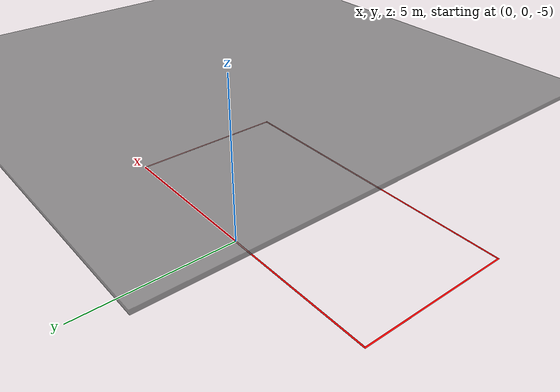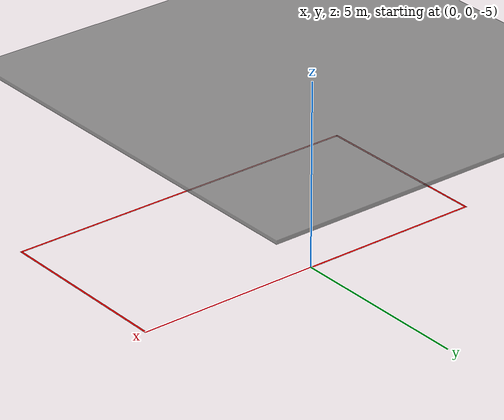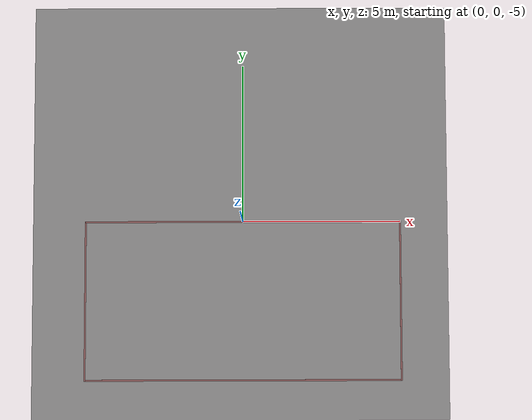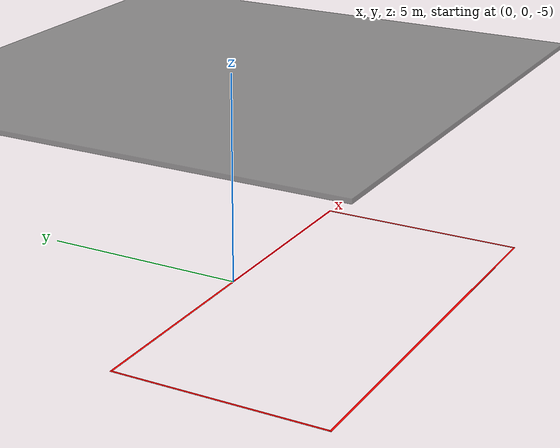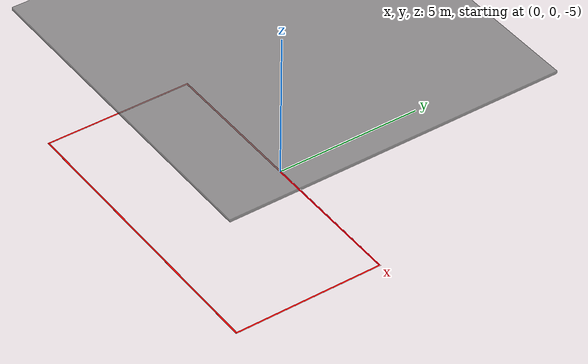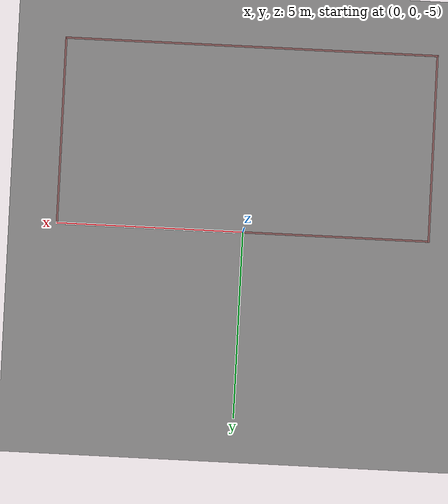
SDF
<sdf version="1.6">
 <world name="sand">
  <plugin filename="gz-sim-physics-system" name="gz::sim::systems::Physics"/>
  <plugin filename="gz-sim-user-commands-system" name="gz::sim::systems::UserCommands"/>
  <plugin filename="gz-sim-scene-broadcaster-system" name="gz::sim::systems::SceneBroadcaster"/>
  <plugin filename="gz-sim-sensors-system" name="gz::sim::systems::Sensors"/>
  <plugin filename="libgz-sim-imu-system.so" name="gz::sim::systems::Imu"/>
  <plugin filename="gz-sim-buoyancy-system" name="gz::sim::systems::Buoyancy">
   <graded_buoyancy>
    <default_density>1000</default_density>
    <density_change><above_depth>0</above_depth><density>1</density></density_change>
   </graded_buoyancy>
   <enable>orca4</enable>
  </plugin>
  <include><uri>https://fuel.gazebosim.org/1.0/OpenRobotics/models/Sun</uri></include>
  <include><uri>model://sea_surface</uri><pose>0 7 0 0 0 0</pose></include>
  <include><uri>model://line_rectangle</uri></include>
 </world>
</sdf>

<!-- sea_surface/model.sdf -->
<sdf version="1.6">
  <model name="sea_surface">
    <static>true</static>
    <link name="seasurface_link">
    <visual name="surface">
      <cast_shadows>false</cast_shadows>
      <pose>0 0 0 0 0 0</pose>
      <geometry>
        <box>
          <size>250 250 .1</size>
        </box>
      </geometry>
      <material>
        <ambient>0.5 0.5 0.5 0.8</ambient>
        <diffuse>0.5 0.5 0.5 0.8</diffuse>
        <pbr>
          <metal>
            <albedo_map>model://sea_surface/materials/water_water_0076_03_s.jpg</albedo_map>
          </metal>
        </pbr>
      </material>
    </visual>
    </link>
  </model>
</sdf>

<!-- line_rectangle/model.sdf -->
<sdf version="1.6">
  <model name="line_rectangle">
    <static>true</static>
    <link name="rectangle_link">

    <visual name="line_1">
      <cast_shadows>false</cast_shadows>
      <pose>0 0 -5 0 0 0</pose>
      <geometry>
        <box>
          <size>10 0.05 .001</size>
        </box>
      </geometry>
      <material>
        <ambient>1 0 0 1</ambient>
        <diffuse>1 0 0 1</diffuse>
        <specular>0.1 0.1 0.1 1</specular>
      </material>
    </visual>

    <visual name="line_2">
      <cast_shadows>false</cast_shadows>
      <pose>5 -2.5 -5 0 0 0</pose>
      <geometry>
        <box>
          <size>0.05 5.05 .001</size>
        </box>
      </geometry>
      <material>
        <ambient>1 0 0 1</ambient>
        <diffuse>1 0 0 1</diffuse>
        <specular>0.1 0.1 0.1 1</specular>
      </material>
    </visual>

    <visual name="line_3">
      <cast_shadows>false</cast_shadows>
      <pose>-5 -2.5 -5 0 0 0</pose>
      <geometry>
        <box>
          <size>0.05 5.05 .001</size>
        </box>
      </geometry>
      <material>
        <ambient>1 0 0 1</ambient>
        <diffuse>1 0 0 1</diffuse>
        <specular>0.1 0.1 0.1 1</specular>
      </material>
    </visual>

    <visual name="line_4">
      <cast_shadows>false</cast_shadows>
      <pose>0 -5 -5 0 0 0</pose>
      <geometry>
        <box>
          <size>10 0.05 .001</size>
        </box>
      </geometry>
      <material>
        <ambient>1 0 0 1</ambient>
        <diffuse>1 0 0 1</diffuse>
        <specular>0.1 0.1 0.1 1</specular>
      </material>
    </visual>

    </link>

  </model>
</sdf>
